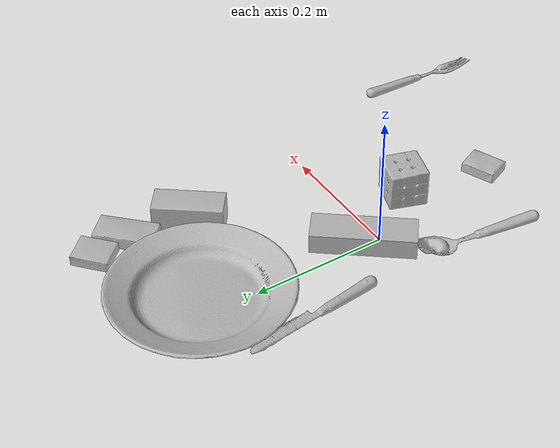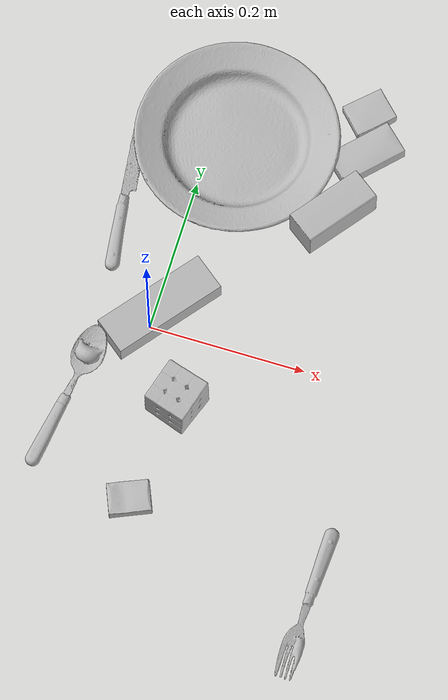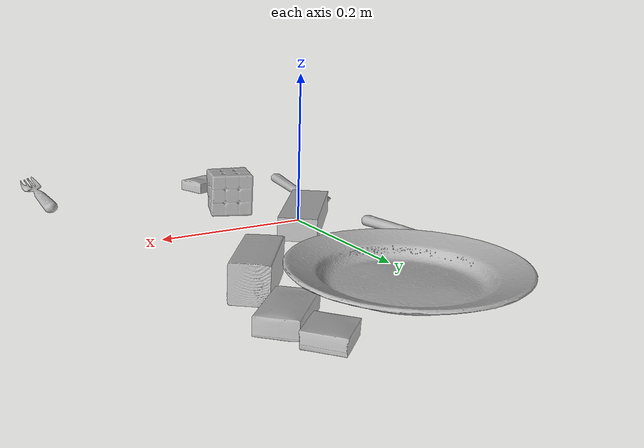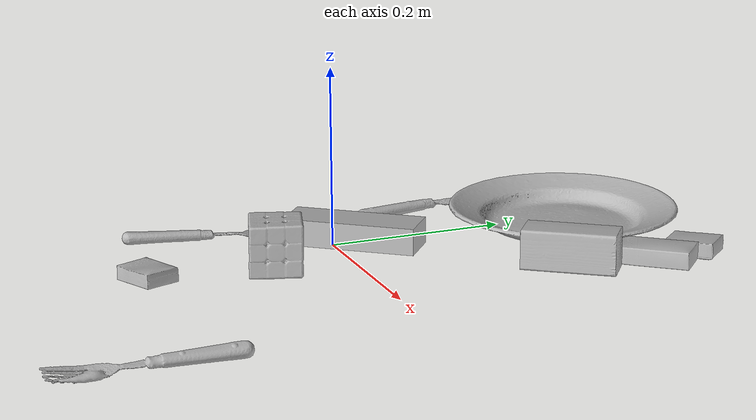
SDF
<sdf version="1.4">
  <world name="default">
    <light name="light1" type="point">
      <pose>0 0 1 0 0 0</pose>
      <diffuse>3 3 3 1</diffuse>
      <specular>3 3 3 1</specular>
    </light>
    <light name="light2" type="point">
      <pose>0 0.5 2 0 0 0</pose>
      <diffuse>1 1 1 1</diffuse>
      <specular>1 1 1 1</specular>
    </light>
    <light name="light3" type="point">
      <pose>0 0.5 2 0 0 0</pose>
      <diffuse>3 3 3 1</diffuse>
      <specular>3 3 3 1</specular>
    </light>
    <scene>
      <ambient>0.7 0.7 0.7</ambient>
    </scene>
    <model name="box11">
      <link name="link_box11">
        <collision name="default">
          <geometry>
            <mesh>
              <uri>model://rubiks_cube/collision_meshes/collision.obj</uri>
              <scale>1.0 1.0 1.0</scale>
            </mesh>
          </geometry>
          <surface>
            <friction>
              <ode>
                <mu>0.5</mu>
                <mu2>0.5</mu2>
              </ode>
            </friction>
          <contact>
        <ode>
            <max_vel>0</max_vel>
            <min_depth>0.0001</min_depth>
            <kp>1e8</kp>
        </ode>
    </contact></surface>
        </collision>
        <visual name="default">
          <geometry>
            <mesh>
              <uri>model://rubiks_cube/visual_meshes/visual.dae</uri>
              <scale>1.0 1.0 1.0</scale>
            </mesh>
          </geometry>
        </visual>
        <inertial>
          <mass>0.14537504315376282</mass>
          <pose>2.6721039830590598e-05 5.2569666877388954e-05 -7.264316082000732e-06 -0.05467316775404926 -0.09814130205097539 -0.03445549690793288</pose>
          <inertia>
            <ixx>8.032947e-05</ixx>
            <iyy>7.9954865e-05</iyy>
            <izz>8.099513e-05</izz>
            <ixy>0</ixy>
            <ixz>0</ixz>
            <iyz>0</iyz>
          </inertia>
        </inertial>
      </link>
      <pose>0.06268979609012604 -0.08638493716716766 0.02867899090051651 -2.5334289079664444e-06 1.4276973929057363e-07 1.271244814554231</pose>
    </model>
    <model name="box12">
      <link name="link_box12">
        <collision name="default">
          <geometry>
            <mesh>
              <uri>model://cracker_box/collision_meshes/collision.obj</uri>
              <scale>0.25 0.25 0.25</scale>
            </mesh>
          </geometry>
          <surface>
            <friction>
              <ode>
                <mu>0.5</mu>
                <mu2>0.5</mu2>
              </ode>
            </friction>
          <contact>
        <ode>
            <max_vel>0</max_vel>
            <min_depth>0.0001</min_depth>
            <kp>1e8</kp>
        </ode>
    </contact></surface>
        </collision>
        <visual name="default">
          <geometry>
            <mesh>
              <uri>model://cracker_box/visual_meshes/visual.dae</uri>
              <scale>0.25 0.25 0.25</scale>
            </mesh>
          </geometry>
        </visual>
        <inertial>
          <mass>0.04629049822688103</mass>
          <pose>0.00023660360602661967 6.358561950037256e-05 -0.00042573834070935845 -0.00031620769195764 -0.01110649332573822 0.0025467952358288496</pose>
          <inertia>
            <ixx>7.358898e-06</ixx>
            <iyy>1.2150985e-05</iyy>
            <izz>1.7340568e-05</izz>
            <ixy>0</ixy>
            <ixz>0</ixz>
            <iyz>0</iyz>
          </inertia>
        </inertial>
      </link>
      <pose>0.04390616714954376 -0.22137001156806946 0.009120451286435127 -0.011787958233711288 -0.007367174908085029 0.397811890044434</pose>
    </model>
    <model name="box13">
      <link name="link_box13">
        <collision name="default">
          <geometry>
            <mesh>
              <uri>model://sugar_box/collision_meshes/collision.obj</uri>
              <scale>0.5 0.5 0.5</scale>
            </mesh>
          </geometry>
          <surface>
            <friction>
              <ode>
                <mu>0.5</mu>
                <mu2>0.5</mu2>
              </ode>
            </friction>
          <contact>
        <ode>
            <max_vel>0</max_vel>
            <min_depth>0.0001</min_depth>
            <kp>1e8</kp>
        </ode>
    </contact></surface>
        </collision>
        <visual name="default">
          <geometry>
            <mesh>
              <uri>model://sugar_box/visual_meshes/visual.dae</uri>
              <scale>0.5 0.5 0.5</scale>
            </mesh>
          </geometry>
        </visual>
        <inertial>
          <mass>0.06844717264175415</mass>
          <pose>0.0005171863595023751 1.924554817378521e-05 -0.00018182402709499002 -0.0004046259509043031 0.0010506635218006705 0.0026153792547683827</pose>
          <inertia>
            <ixx>1.4257497e-05</ixx>
            <iyy>4.608316e-05</iyy>
            <izz>5.5167053e-05</izz>
            <ixy>0</ixy>
            <ixz>0</ixz>
            <iyz>0</iyz>
          </inertia>
        </inertial>
      </link>
      <pose>0.19226184487342834 0.29682686924934387 0.011400251649320126 0.00010520611105287625 -0.023244679949324217 0.7995697123800848</pose>
    </model>
    <model name="box21">
      <link name="link_box21">
        <collision name="default">
          <geometry>
            <mesh>
              <uri>model://wood_block/collision_meshes/collision.obj</uri>
              <scale>0.5 0.5 0.5</scale>
            </mesh>
          </geometry>
          <surface>
            <friction>
              <ode>
                <mu>0.5</mu>
                <mu2>0.5</mu2>
              </ode>
            </friction>
          <contact>
        <ode>
            <max_vel>0</max_vel>
            <min_depth>0.0001</min_depth>
            <kp>1e8</kp>
        </ode>
    </contact></surface>
        </collision>
        <visual name="default">
          <geometry>
            <mesh>
              <uri>model://wood_block/visual_meshes/visual.dae</uri>
              <scale>0.5 0.5 0.5</scale>
            </mesh>
          </geometry>
        </visual>
        <inertial>
          <mass>0.22006426751613617</mass>
          <pose>-2.9066577553749084e-06 -0.00028540476341731846 0.00013204292918089777 -0.05220890442695651 -0.005192696130650637 -0.006861379915905358</pose>
          <inertia>
            <ixx>7.361981e-05</ixx>
            <iyy>0.00023256506</iyy>
            <izz>0.00023169514</izz>
            <ixy>0</ixy>
            <ixz>0</ixz>
            <iyz>0</iyz>
          </inertia>
        </inertial>
      </link>
      <pose>0.17548245191574097 0.20595966279506683 0.02252747304737568 -0.015845064777751477 -0.0004016450436143634 0.923811945886287</pose>
    </model>
    <model name="box22">
      <link name="link_box22">
        <collision name="default">
          <geometry>
            <mesh>
              <uri>model://jenga/collision_meshes/collision.obj</uri>
              <scale>1.0 1.0 1.0</scale>
            </mesh>
          </geometry>
          <surface>
            <friction>
              <ode>
                <mu>0.5</mu>
                <mu2>0.5</mu2>
              </ode>
            </friction>
          <contact>
        <ode>
            <max_vel>0</max_vel>
            <min_depth>0.0001</min_depth>
            <kp>1e8</kp>
        </ode>
    </contact></surface>
        </collision>
        <visual name="default">
          <geometry>
            <mesh>
              <uri>model://jenga/visual_meshes/visual.dae</uri>
              <scale>1.0 1.0 1.0</scale>
            </mesh>
          </geometry>
        </visual>
        <inertial>
          <mass>0.1883949637413025</mass>
          <pose>-2.502855807051674e-07 -0.00010250010382151231 -4.0923405322246253e-05 0.0 -7.342154049184251e-07 0.0</pose>
          <inertia>
            <ixx>5.213346e-05</ixx>
            <iyy>0.0003532549</iyy>
            <izz>0.00037712968</izz>
            <ixy>0</ixy>
            <ixz>0</ixz>
            <iyz>0</iyz>
          </inertia>
        </inertial>
      </link>
      <pose>0.00584709458053112 0.023410998284816742 0.01500000525265932 6.315436323146053e-08 -3.002628199237276e-08 -2.2371095690886356</pose>
    </model>
    <model name="box23">
      <link name="link_box23">
        <collision name="default">
          <geometry>
            <mesh>
              <uri>model://pudding_box/collision_meshes/collision.obj</uri>
              <scale>0.5 0.5 0.5</scale>
            </mesh>
          </geometry>
          <surface>
            <friction>
              <ode>
                <mu>0.5</mu>
                <mu2>0.5</mu2>
              </ode>
            </friction>
          <contact>
        <ode>
            <max_vel>0</max_vel>
            <min_depth>0.0001</min_depth>
            <kp>1e8</kp>
        </ode>
    </contact></surface>
        </collision>
        <visual name="default">
          <geometry>
            <mesh>
              <uri>model://pudding_box/visual_meshes/visual.dae</uri>
              <scale>0.5 0.5 0.5</scale>
            </mesh>
          </geometry>
        </visual>
        <inertial>
          <mass>0.030779412016272545</mass>
          <pose>0.00024474109522998333 0.0004033942532259971 -0.0002594413817860186 0.0052131022413302 -0.00660379919873188 0.020079828882866795</pose>
          <inertia>
            <ixx>8.6986365e-06</ixx>
            <iyy>5.8525034e-06</iyy>
            <izz>1.2845808e-05</izz>
            <ixy>0</ixy>
            <ixz>0</ixz>
            <iyz>0</iyz>
          </inertia>
        </inertial>
      </link>
      <pose>0.18083837628364563 0.3524222671985626 0.009862902574241161 0.02234843363040604 -0.011391757482999426 -0.8142158175973236</pose>
    </model>
    <model name="plate1">
      <link name="link_plate1">
        <collision name="default">
          <geometry>
            <mesh>
              <uri>model://plate/collision_meshes/collision.obj</uri>
              <scale>1.0 1.0 1.0</scale>
            </mesh>
          </geometry>
          <surface>
            <friction>
              <ode>
                <mu>0.5</mu>
                <mu2>0.5</mu2>
              </ode>
            </friction>
          <contact>
        <ode>
            <max_vel>0</max_vel>
            <min_depth>0.0001</min_depth>
            <kp>1e8</kp>
        </ode>
    </contact></surface>
        </collision>
        <visual name="default">
          <geometry>
            <mesh>
              <uri>model://plate/visual_meshes/visual.dae</uri>
              <scale>1.0 1.0 1.0</scale>
            </mesh>
          </geometry>
        </visual>
        <inertial>
          <mass>0.2551877498626709</mass>
          <pose>-0.0006044633337296546 0.0002782584633678198 -0.0010561984963715076 0.002218758596895186 -0.003225500510611216 0.45261892370472845</pose>
          <inertia>
            <ixx>0.0011937734</ixx>
            <iyy>0.0011823553</iyy>
            <izz>0.002334842</izz>
            <ixy>0</ixy>
            <ixz>0</ixz>
            <iyz>0</iyz>
          </inertia>
        </inertial>
      </link>
      <pose>0.0313345342874527 0.2688751816749573 0.013833719305694103 -0.0011247194676418735 0.0007131120008252601 2.482354946643275</pose>
    </model>
    <model name="silverware1">
      <link name="link_silverware1">
        <collision name="default">
          <geometry>
            <mesh>
              <uri>model://knife/collision_meshes/collision.obj</uri>
              <scale>1.0 1.0 1.0</scale>
            </mesh>
          </geometry>
          <surface>
            <friction>
              <ode>
                <mu>0.5</mu>
                <mu2>0.5</mu2>
              </ode>
            </friction>
          <contact>
        <ode>
            <max_vel>0</max_vel>
            <min_depth>0.0001</min_depth>
            <kp>1e8</kp>
        </ode>
    </contact></surface>
        </collision>
        <visual name="default">
          <geometry>
            <mesh>
              <uri>model://knife/visual_meshes/visual.dae</uri>
              <scale>1.0 1.0 1.0</scale>
            </mesh>
          </geometry>
        </visual>
        <inertial>
          <mass>0.030903667211532593</mass>
          <pose>-0.023785250261425972 0.0015275125624611974 5.062023410573602e-05 0.07305665398911224 0.017248417197799442 -0.0074098217442817044</pose>
          <inertia>
            <ixx>8.7717143e-07</ixx>
            <iyy>0.00011872688</iyy>
            <izz>0.000119009375</izz>
            <ixy>0</ixy>
            <ixz>0</ixz>
            <iyz>0</iyz>
          </inertia>
        </inertial>
      </link>
      <pose>-0.08004063367843628 0.16237862408161163 0.007946575060486794 -0.023839181279843073 -0.014543238214035428 1.6896693422591846</pose>
    </model>
    <model name="silverware2">
      <link name="link_silverware2">
        <collision name="default">
          <geometry>
            <mesh>
              <uri>model://spoon/collision_meshes/collision.obj</uri>
              <scale>1.0 1.0 1.0</scale>
            </mesh>
          </geometry>
          <surface>
            <friction>
              <ode>
                <mu>0.5</mu>
                <mu2>0.5</mu2>
              </ode>
            </friction>
          <contact>
        <ode>
            <max_vel>0</max_vel>
            <min_depth>0.0001</min_depth>
            <kp>1e8</kp>
        </ode>
    </contact></surface>
        </collision>
        <visual name="default">
          <geometry>
            <mesh>
              <uri>model://spoon/visual_meshes/visual.dae</uri>
              <scale>1.0 1.0 1.0</scale>
            </mesh>
          </geometry>
        </visual>
        <inertial>
          <mass>0.020994963124394417</mass>
          <pose>-0.005526323337107897 -0.00160341733135283 -0.0007271658978424966 0.035216710718480135 -0.03906584501417282 0.00615060951780049</pose>
          <inertia>
            <ixx>1.1677738e-06</ixx>
            <iyy>7.988513e-05</iyy>
            <izz>8.046103e-05</izz>
            <ixy>0</ixy>
            <ixz>0</ixz>
            <iyz>0</iyz>
          </inertia>
        </inertial>
      </link>
      <pose>-0.07263271510601044 -0.11853205412626266 0.008373427204787731 -0.04370018261465798 0.02636100579143829 1.4187795416917182</pose>
    </model>
    <model name="silverware3">
      <link name="link_silverware3">
        <collision name="default">
          <geometry>
            <mesh>
              <uri>model://fork/collision_meshes/collision.obj</uri>
              <scale>1.0 1.0 1.0</scale>
            </mesh>
          </geometry>
          <surface>
            <friction>
              <ode>
                <mu>0.5</mu>
                <mu2>0.5</mu2>
              </ode>
            </friction>
          <contact>
        <ode>
            <max_vel>0</max_vel>
            <min_depth>0.0001</min_depth>
            <kp>1e8</kp>
        </ode>
    </contact></surface>
        </collision>
        <visual name="default">
          <geometry>
            <mesh>
              <uri>model://fork/visual_meshes/visual.dae</uri>
              <scale>1.0 1.0 1.0</scale>
            </mesh>
          </geometry>
        </visual>
        <inertial>
          <mass>0.012144052423536777</mass>
          <pose>-0.029570043087005615 0.0004658822144847363 0.0003218860656488687 -0.013551171335247731 -0.01097783699854739 0.014453902564514984</pose>
          <inertia>
            <ixx>4.257177e-07</ixx>
            <iyy>3.170462e-05</iyy>
            <izz>3.1895037e-05</izz>
            <ixy>0</ixy>
            <ixz>0</ixz>
            <iyz>0</iyz>
          </inertia>
        </inertial>
      </link>
      <pose>0.2883374094963074 -0.2832353413105011 0.005759889259934425 -0.1911807759824193 0.023936476579880378 -1.6144817925087833</pose>
    </model>
  <physics type="ode">
      <max_contacts>50</max_contacts>
      <ode>
        <solver>
          <type>quick</type>
          <iters>75</iters>
        </solver>
        <constraints>
          <contact_max_correcting_vel>0</contact_max_correcting_vel>
          <contact_surface_layer>0</contact_surface_layer>
        </constraints>
      </ode>
    </physics></world>
</sdf>
